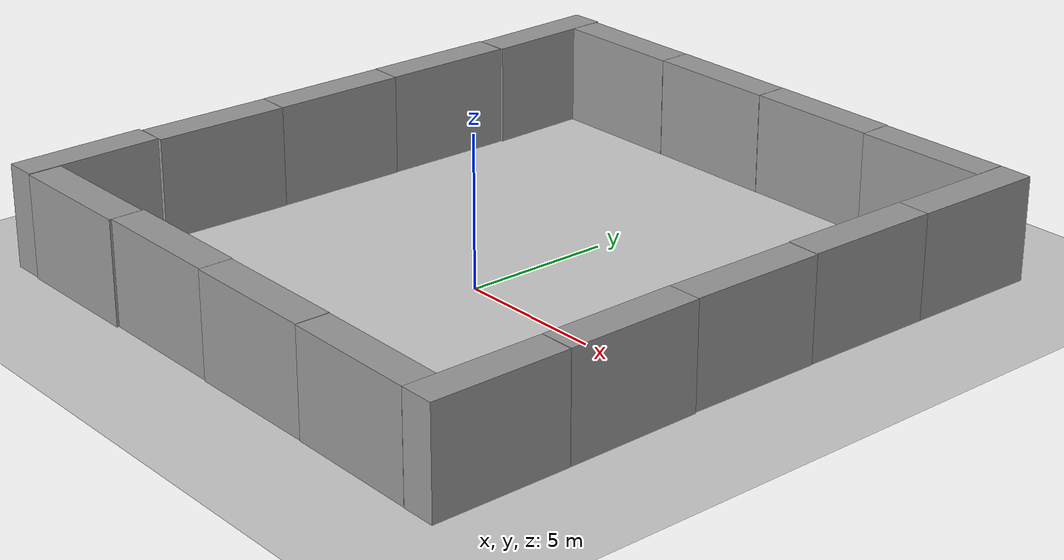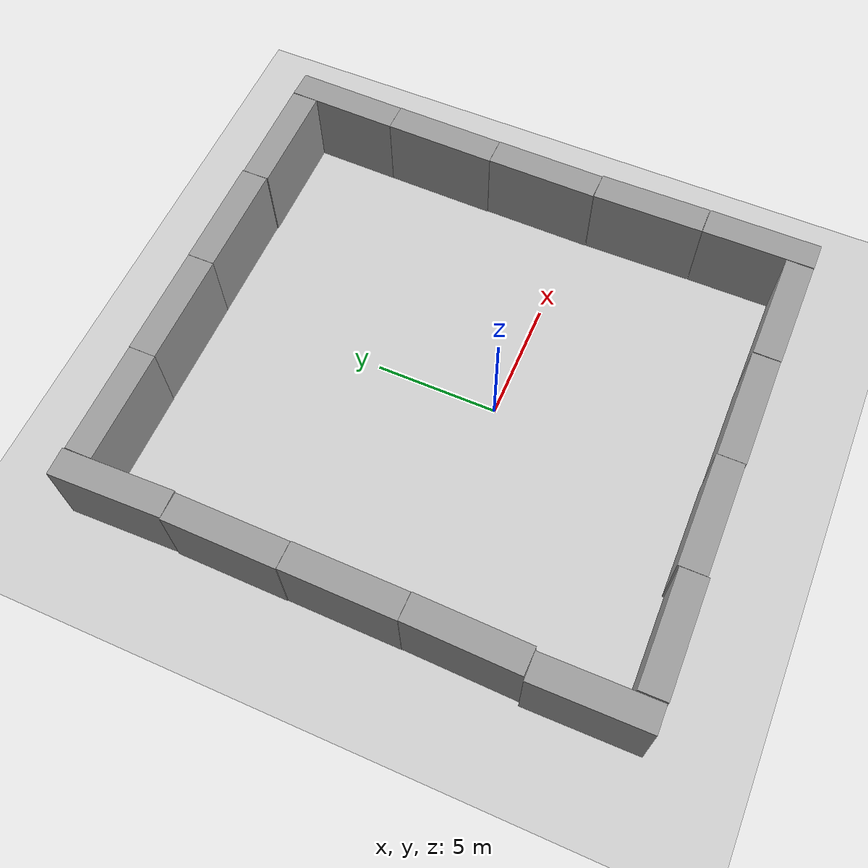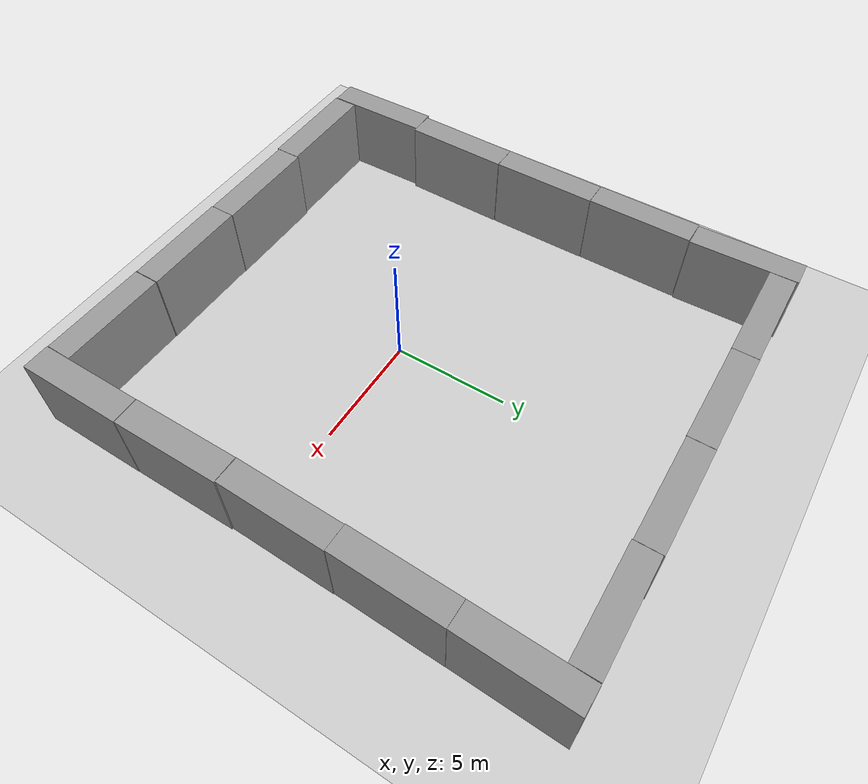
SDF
<sdf version="1.6">
 <world name="default">
  <light name="sun" type="directional">
   <pose>0 0 10 0 -0 0</pose>
   <diffuse>0.8 0.8 0.8 1</diffuse>
   <specular>0.1 0.1 0.1 1</specular>
   <attenuation>
    <range>1000</range>
    <constant>0.9</constant>
    <linear>0.01</linear>
    <quadratic>0.001</quadratic>
   </attenuation>
   <direction>-0.5 0.5 -1</direction>
  </light>
  <model name="ground_plane">
   <static>1</static>
   <link name="link">
    <collision name="collision">
     <geometry><plane><normal>0 0 1</normal><size>100 100</size></plane></geometry>
     <surface><friction><ode><mu>100</mu><mu2>50</mu2></ode></friction></surface>
    </collision>
    <visual name="visual">
     <cast_shadows>0</cast_shadows>
     <geometry><plane><normal>0 0 1</normal><size>100 100</size></plane></geometry>
     <material>
      <script><uri>file://media/materials/scripts/gazebo.material</uri><name>Gazebo/Grey</name></script>
     </material>
    </visual>
   </link>
  </model>
  <gravity>0 0 -9.8</gravity>
  <magnetic_field>6e-06 2.3e-05 -4.2e-05</magnetic_field>
  <atmosphere type="adiabatic"/>
  <physics name="default_physics" default="0" type="ode">
   <max_step_size>0.001</max_step_size>
   <real_time_factor>1</real_time_factor>
   <real_time_update_rate>1000</real_time_update_rate>
  </physics>
  <scene><ambient>0.4 0.4 0.4 1</ambient><background>0.7 0.7 0.7 1</background><shadows>1</shadows></scene>
  <spherical_coordinates>
   <surface_model>EARTH_WGS84</surface_model>
   <latitude_deg>0</latitude_deg>
   <longitude_deg>0</longitude_deg>
   <elevation>0</elevation>
   <heading_deg>0</heading_deg>
  </spherical_coordinates>
  <model name="unit_box_0">
   <pose>9.58979 6.29013 1.71067 -2e-06 -1e-06 -0.015594</pose>
   <link name="link">
    <inertial>
     <mass>1</mass>
     <inertia>
      <ixx>0.166667</ixx>
      <ixy>0</ixy>
      <ixz>0</ixz>
      <iyy>0.166667</iyy>
      <iyz>0</iyz>
      <izz>0.166667</izz>
     </inertia>
    </inertial>
    <collision name="collision"><geometry><box><size>1.10379 4.5568 3.42135</size></box></geometry></collision>
    <visual name="visual">
     <geometry><box><size>1.10379 4.5568 3.42135</size></box></geometry>
     <material>
      <script><name>Gazebo/Grey</name><uri>file://media/materials/scripts/gazebo.material</uri></script>
     </material>
    </visual>
   </link>
  </model>
  <model name="unit_box_0_clone">
   <pose>9.55173 1.7308 1.70629 5.6e-05 -2e-06 -0.011158</pose>
   <link name="link">
    <inertial>
     <mass>1</mass>
     <inertia>
      <ixx>0.166667</ixx>
      <ixy>0</ixy>
      <ixz>0</ixz>
      <iyy>0.166667</iyy>
      <iyz>0</iyz>
      <izz>0.166667</izz>
     </inertia>
    </inertial>
    <collision name="collision"><geometry><box><size>1.09926 4.5568 3.41284</size></box></geometry></collision>
    <visual name="visual">
     <geometry><box><size>1.09926 4.5568 3.41284</size></box></geometry>
     <material>
      <script><name>Gazebo/Grey</name><uri>file://media/materials/scripts/gazebo.material</uri></script>
     </material>
    </visual>
   </link>
  </model>
  <model name="unit_box_0_clone_clone">
   <pose>9.57788 -2.8386 1.71332 5.5e-05 -2e-06 0.010192</pose>
   <link name="link">
    <inertial>
     <mass>1</mass>
     <inertia>
      <ixx>0.166667</ixx>
      <ixy>0</ixy>
      <ixz>0</ixz>
      <iyy>0.166667</iyy>
      <iyz>0</iyz>
      <izz>0.166667</izz>
     </inertia>
    </inertial>
    <collision name="collision"><geometry><box><size>1.13173 4.5568 3.4269</size></box></geometry></collision>
    <visual name="visual">
     <geometry><box><size>1.13173 4.5568 3.4269</size></box></geometry>
     <material>
      <script><name>Gazebo/Grey</name><uri>file://media/materials/scripts/gazebo.material</uri></script>
     </material>
    </visual>
   </link>
  </model>
  <model name="unit_box_0_clone_clone_1">
   <pose>-9.83728 -7.42823 1.70629 5.6e-05 2e-06 0.011766</pose>
   <link name="link">
    <inertial>
     <mass>1</mass>
     <inertia>
      <ixx>0.166667</ixx>
      <ixy>0</ixy>
      <ixz>0</ixz>
      <iyy>0.166667</iyy>
      <iyz>0</iyz>
      <izz>0.166667</izz>
     </inertia>
    </inertial>
    <collision name="collision"><geometry><box><size>1.09926 4.5568 3.41283</size></box></geometry></collision>
    <visual name="visual">
     <geometry><box><size>1.09926 4.5568 3.41283</size></box></geometry>
     <material>
      <script><name>Gazebo/Grey</name><uri>file://media/materials/scripts/gazebo.material</uri></script>
     </material>
    </visual>
   </link>
  </model>
  <model name="unit_box_0_clone_clone_2">
   <pose>-9.68114 -2.85381 1.70629 5.6e-05 -2e-06 -0.018584</pose>
   <link name="link">
    <inertial>
     <mass>1</mass>
     <inertia>
      <ixx>0.166667</ixx>
      <ixy>0</ixy>
      <ixz>0</ixz>
      <iyy>0.166667</iyy>
      <iyz>0</iyz>
      <izz>0.166667</izz>
     </inertia>
    </inertial>
    <collision name="collision"><geometry><box><size>1.09926 4.5568 3.41283</size></box></geometry></collision>
    <visual name="visual">
     <geometry><box><size>1.09926 4.5568 3.41283</size></box></geometry>
     <material>
      <script><name>Gazebo/Grey</name><uri>file://media/materials/scripts/gazebo.material</uri></script>
     </material>
    </visual>
   </link>
  </model>
  <model name="unit_box_0_clone_clone_3">
   <pose>-9.63827 1.71018 1.70629 -5.6e-05 2e-06 -0.007189</pose>
   <link name="link">
    <inertial>
     <mass>1</mass>
     <inertia>
      <ixx>0.166667</ixx>
      <ixy>0</ixy>
      <ixz>0</ixz>
      <iyy>0.166667</iyy>
      <iyz>0</iyz>
      <izz>0.166667</izz>
     </inertia>
    </inertial>
    <collision name="collision"><geometry><box><size>1.09926 4.5568 3.41283</size></box></geometry></collision>
    <visual name="visual">
     <geometry><box><size>1.09926 4.5568 3.41283</size></box></geometry>
     <material>
      <script><name>Gazebo/Grey</name><uri>file://media/materials/scripts/gazebo.material</uri></script>
     </material>
    </visual>
   </link>
  </model>
  <model name="unit_box_0_clone_clone_4">
   <pose>-9.62774 6.27543 1.70641 2e-06 5e-06 -0.006628</pose>
   <link name="link">
    <inertial>
     <mass>1</mass>
     <inertia>
      <ixx>0.166667</ixx>
      <ixy>0</ixy>
      <ixz>0</ixz>
      <iyy>0.166667</iyy>
      <iyz>0</iyz>
      <izz>0.166667</izz>
     </inertia>
    </inertial>
    <collision name="collision"><geometry><box><size>1.09926 4.5568 3.41283</size></box></geometry></collision>
    <visual name="visual">
     <geometry><box><size>1.09926 4.5568 3.41283</size></box></geometry>
     <material>
      <script><name>Gazebo/Grey</name><uri>file://media/materials/scripts/gazebo.material</uri></script>
     </material>
    </visual>
   </link>
  </model>
  <model name="unit_box_0_clone_clone_5">
   <pose>-9.6246 10.8535 1.70629 5.7e-05 -2e-06 0.027085</pose>
   <link name="link">
    <inertial>
     <mass>1</mass>
     <inertia>
      <ixx>0.166667</ixx>
      <ixy>0</ixy>
      <ixz>0</ixz>
      <iyy>0.166667</iyy>
      <iyz>0</iyz>
      <izz>0.166667</izz>
     </inertia>
    </inertial>
    <collision name="collision"><geometry><box><size>1.09926 4.5568 3.41283</size></box></geometry></collision>
    <visual name="visual">
     <geometry><box><size>1.09926 4.5568 3.41283</size></box></geometry>
     <material>
      <script><name>Gazebo/Grey</name><uri>file://media/materials/scripts/gazebo.material</uri></script>
     </material>
    </visual>
   </link>
  </model>
  <model name="unit_box_0_clone_clone_6">
   <pose>9.66554 10.8511 1.70629 -5.7e-05 -2e-06 3.12197</pose>
   <link name="link">
    <inertial>
     <mass>1</mass>
     <inertia>
      <ixx>0.166667</ixx>
      <ixy>0</ixy>
      <ixz>0</ixz>
      <iyy>0.166667</iyy>
      <iyz>0</iyz>
      <izz>0.166667</izz>
     </inertia>
    </inertial>
    <collision name="collision"><geometry><box><size>1.09926 4.5568 3.41283</size></box></geometry></collision>
    <visual name="visual">
     <geometry><box><size>1.09926 4.5568 3.41283</size></box></geometry>
     <material>
      <script><name>Gazebo/Grey</name><uri>file://media/materials/scripts/gazebo.material</uri></script>
     </material>
    </visual>
   </link>
  </model>
  <model name="unit_box_0_clone_clone_7">
   <pose>-6.82559 12.5353 1.70641 2e-06 -1e-06 -1.56389</pose>
   <link name="link">
    <inertial>
     <mass>1</mass>
     <inertia>
      <ixx>0.166667</ixx>
      <ixy>0</ixy>
      <ixz>0</ixz>
      <iyy>0.166667</iyy>
      <iyz>0</iyz>
      <izz>0.166667</izz>
     </inertia>
    </inertial>
    <collision name="collision"><geometry><box><size>1.09926 4.5568 3.41283</size></box></geometry></collision>
    <visual name="visual">
     <geometry><box><size>1.09926 4.5568 3.41283</size></box></geometry>
     <material>
      <script><name>Gazebo/Grey</name><uri>file://media/materials/scripts/gazebo.material</uri></script>
     </material>
    </visual>
   </link>
  </model>
  <model name="unit_box_0_clone_clone_7_clone">
   <pose>-2.26703 12.5714 1.70641 2e-06 -1e-06 -1.56727</pose>
   <link name="link">
    <inertial>
     <mass>1</mass>
     <inertia>
      <ixx>0.166667</ixx>
      <ixy>0</ixy>
      <ixz>0</ixz>
      <iyy>0.166667</iyy>
      <iyz>0</iyz>
      <izz>0.166667</izz>
     </inertia>
    </inertial>
    <collision name="collision"><geometry><box><size>1.09926 4.5568 3.41283</size></box></geometry></collision>
    <visual name="visual">
     <geometry><box><size>1.09926 4.5568 3.41283</size></box></geometry>
     <material>
      <script><name>Gazebo/Grey</name><uri>file://media/materials/scripts/gazebo.material</uri></script>
     </material>
    </visual>
   </link>
  </model>
  <model name="unit_box_0_clone_clone_7_clone_0">
   <pose>2.29465 12.5966 1.70629 -5.6e-05 -2e-06 -1.5673</pose>
   <link name="link">
    <inertial>
     <mass>1</mass>
     <inertia>
      <ixx>0.166667</ixx>
      <ixy>0</ixy>
      <ixz>0</ixz>
      <iyy>0.166667</iyy>
      <iyz>0</iyz>
      <izz>0.166667</izz>
     </inertia>
    </inertial>
    <collision name="collision"><geometry><box><size>1.09926 4.5568 3.41283</size></box></geometry></collision>
    <visual name="visual">
     <geometry><box><size>1.09926 4.5568 3.41283</size></box></geometry>
     <material>
      <script><name>Gazebo/Grey</name><uri>file://media/materials/scripts/gazebo.material</uri></script>
     </material>
    </visual>
   </link>
  </model>
  <model name="unit_box_0_clone_clone_7_clone_1">
   <pose>6.85741 12.5773 1.70629 -5.6e-05 2e-06 -1.56568</pose>
   <link name="link">
    <inertial>
     <mass>1</mass>
     <inertia>
      <ixx>0.166667</ixx>
      <ixy>0</ixy>
      <ixz>0</ixz>
      <iyy>0.166667</iyy>
      <iyz>0</iyz>
      <izz>0.166667</izz>
     </inertia>
    </inertial>
    <collision name="collision"><geometry><box><size>1.09926 4.5568 3.41283</size></box></geometry></collision>
    <visual name="visual">
     <geometry><box><size>1.09926 4.5568 3.41283</size></box></geometry>
     <material>
      <script><name>Gazebo/Grey</name><uri>file://media/materials/scripts/gazebo.material</uri></script>
     </material>
    </visual>
   </link>
  </model>
  <model name="unit_box_0_clone_clone_clone">
   <pose>9.61462 -7.41535 1.71333 -5.5e-05 -2e-06 0.002744</pose>
   <link name="link">
    <inertial>
     <mass>1</mass>
     <inertia>
      <ixx>0.166667</ixx>
      <ixy>0</ixy>
      <ixz>0</ixz>
      <iyy>0.166667</iyy>
      <iyz>0</iyz>
      <izz>0.166667</izz>
     </inertia>
    </inertial>
    <collision name="collision"><geometry><box><size>1.13173 4.5568 3.4269</size></box></geometry></collision>
    <visual name="visual">
     <geometry><box><size>1.13173 4.5568 3.4269</size></box></geometry>
     <material>
      <script><name>Gazebo/Grey</name><uri>file://media/materials/scripts/gazebo.material</uri></script>
     </material>
    </visual>
   </link>
  </model>
  <model name="unit_box_0_clone_clone_7_clone_2">
   <pose>-6.94498 -9.17135 1.70629 -5.6e-05 -2e-06 -1.56277</pose>
   <link name="link">
    <inertial>
     <mass>1</mass>
     <inertia>
      <ixx>0.166667</ixx>
      <ixy>0</ixy>
      <ixz>0</ixz>
      <iyy>0.166667</iyy>
      <iyz>0</iyz>
      <izz>0.166667</izz>
     </inertia>
    </inertial>
    <collision name="collision"><geometry><box><size>1.09926 4.5568 3.41283</size></box></geometry></collision>
    <visual name="visual">
     <geometry><box><size>1.09926 4.5568 3.41283</size></box></geometry>
     <material>
      <script><name>Gazebo/Grey</name><uri>file://media/materials/scripts/gazebo.material</uri></script>
     </material>
    </visual>
   </link>
  </model>
  <model name="unit_box_0_clone_clone_7_clone_3">
   <pose>-2.38117 -9.07491 1.70641 -2e-06 1e-06 -1.56831</pose>
   <link name="link">
    <inertial>
     <mass>1</mass>
     <inertia>
      <ixx>0.166667</ixx>
      <ixy>0</ixy>
      <ixz>0</ixz>
      <iyy>0.166667</iyy>
      <iyz>0</iyz>
      <izz>0.166667</izz>
     </inertia>
    </inertial>
    <collision name="collision"><geometry><box><size>1.09926 4.5568 3.41283</size></box></geometry></collision>
    <visual name="visual">
     <geometry><box><size>1.09926 4.5568 3.41283</size></box></geometry>
     <material>
      <script><name>Gazebo/Grey</name><uri>file://media/materials/scripts/gazebo.material</uri></script>
     </material>
    </visual>
   </link>
  </model>
  <model name="unit_box_0_clone_clone_7_clone_4">
   <pose>2.17755 -9.09209 1.70629 -5.6e-05 2e-06 -1.56798</pose>
   <link name="link">
    <inertial>
     <mass>1</mass>
     <inertia>
      <ixx>0.166667</ixx>
      <ixy>0</ixy>
      <ixz>0</ixz>
      <iyy>0.166667</iyy>
      <iyz>0</iyz>
      <izz>0.166667</izz>
     </inertia>
    </inertial>
    <collision name="collision"><geometry><box><size>1.09926 4.5568 3.41283</size></box></geometry></collision>
    <visual name="visual">
     <geometry><box><size>1.09926 4.5568 3.41283</size></box></geometry>
     <material>
      <script><name>Gazebo/Grey</name><uri>file://media/materials/scripts/gazebo.material</uri></script>
     </material>
    </visual>
   </link>
  </model>
  <model name="unit_box_0_clone_clone_7_clone_5">
   <pose>6.75815 -9.11697 1.70629 5.6e-05 2e-06 -1.57787</pose>
   <link name="link">
    <inertial>
     <mass>1</mass>
     <inertia>
      <ixx>0.166667</ixx>
      <ixy>0</ixy>
      <ixz>0</ixz>
      <iyy>0.166667</iyy>
      <iyz>0</iyz>
      <izz>0.166667</izz>
     </inertia>
    </inertial>
    <collision name="collision"><geometry><box><size>1.09926 4.5568 3.41283</size></box></geometry></collision>
    <visual name="visual">
     <geometry><box><size>1.09926 4.5568 3.41283</size></box></geometry>
     <material>
      <script><name>Gazebo/Grey</name><uri>file://media/materials/scripts/gazebo.material</uri></script>
     </material>
    </visual>
   </link>
  </model>
 </world>
</sdf>
